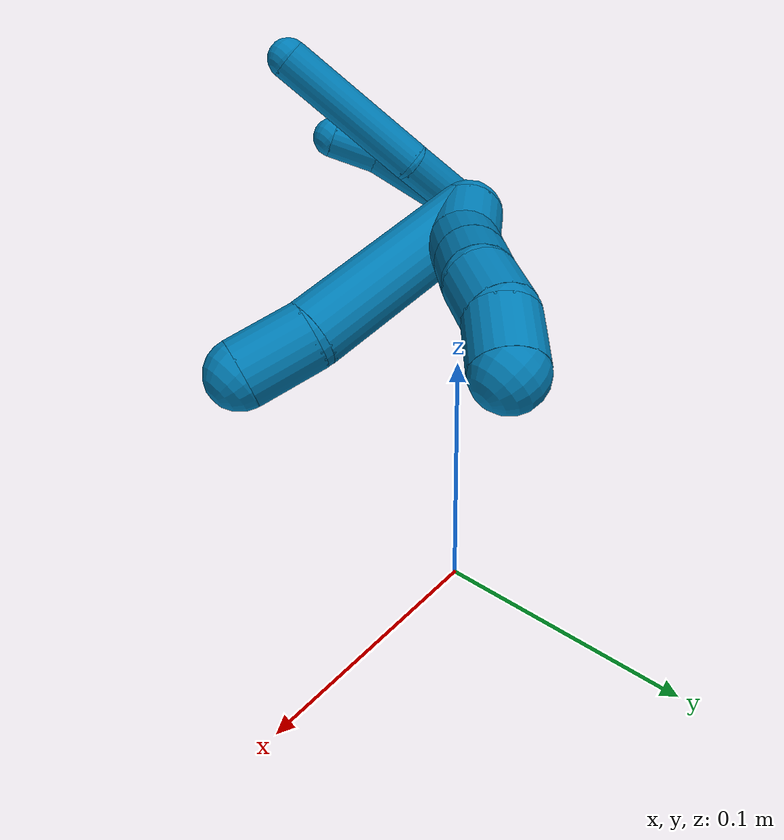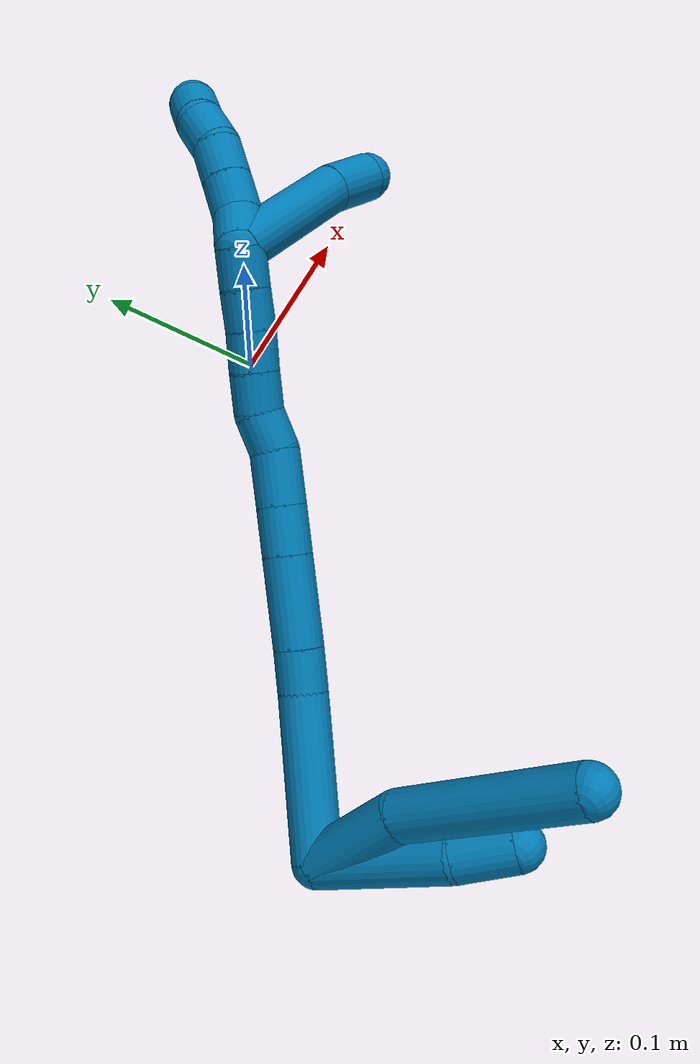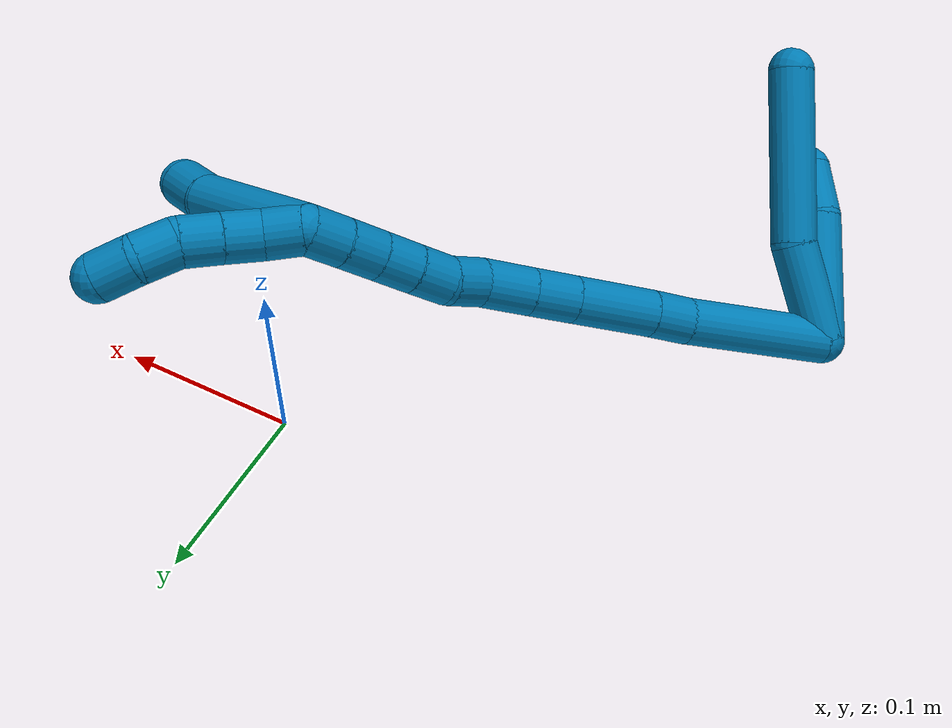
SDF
<sdf version="1.7">
 <world name="default">
  <model name="9">
   <static>0</static>
   <link name="9">
    <collision name="collision-cylinder-e_1_2_8">
     <pose>0.017237 -0.020061 -0.007494 1.9283 0.677734 0.939916</pose>
     <geometry><cylinder><radius>0.0125</radius><length>0.054981</length></cylinder></geometry>
     <surface>
      <friction><ode><mu>1.16</mu><mu2>1.16</mu2><slip1>0</slip1><slip2>0</slip2></ode></friction>
      <contact><ode><kp>1e+06</kp><kd>1</kd><max_vel>0</max_vel><min_depth>0.001</min_depth></ode></contact>
     </surface>
    </collision>
    <visual name="visual-cylinder-e_1_2_8">
     <pose>0.017237 -0.020061 -0.007494 1.9283 0.677734 0.939916</pose>
     <geometry><cylinder><radius>0.0125</radius><length>0.054981</length></cylinder></geometry>
     <material><ambient>0 0.490196 0.709804 1</ambient></material>
    </visual>
    <collision name="collision-cylinder-e_2_8_6">
     <pose>0.053552 -0.083029 -0.022216 1.7377 0.413197 0.485912</pose>
     <geometry><cylinder><radius>0.0125</radius><length>0.095019</length></cylinder></geometry>
     <surface>
      <friction><ode><mu>1.16</mu><mu2>1.16</mu2><slip1>0</slip1><slip2>0</slip2></ode></friction>
      <contact><ode><kp>1e+06</kp><kd>1</kd><max_vel>0</max_vel><min_depth>0.001</min_depth></ode></contact>
     </surface>
    </collision>
    <visual name="visual-cylinder-e_2_8_6">
     <pose>0.053552 -0.083029 -0.022216 1.7377 0.413197 0.485912</pose>
     <geometry><cylinder><radius>0.0125</radius><length>0.095019</length></cylinder></geometry>
     <material><ambient>0 0.490196 0.709804 1</ambient></material>
    </visual>
    <collision name="collision-cylinder-e_1_2_9">
     <pose>0.009195 -0.032657 -0.00847 1.82457 0.266089 0.342561</pose>
     <geometry><cylinder><radius>0.0125</radius><length>0.069935</length></cylinder></geometry>
     <surface>
      <friction><ode><mu>1.16</mu><mu2>1.16</mu2><slip1>0</slip1><slip2>0</slip2></ode></friction>
      <contact><ode><kp>1e+06</kp><kd>1</kd><max_vel>0</max_vel><min_depth>0.001</min_depth></ode></contact>
     </surface>
    </collision>
    <visual name="visual-cylinder-e_1_2_9">
     <pose>0.009195 -0.032657 -0.00847 1.82457 0.266089 0.342561</pose>
     <geometry><cylinder><radius>0.0125</radius><length>0.069935</length></cylinder></geometry>
     <material><ambient>0 0.490196 0.709804 1</ambient></material>
    </visual>
    <collision name="collision-cylinder-e_2_9_5">
     <pose>0.021556 -0.078379 -0.023665 2.04611 0.212158 0.345628</pose>
     <geometry><cylinder><radius>0.0125</radius><length>0.030065</length></cylinder></geometry>
     <surface>
      <friction><ode><mu>1.16</mu><mu2>1.16</mu2><slip1>0</slip1><slip2>0</slip2></ode></friction>
      <contact><ode><kp>1e+06</kp><kd>1</kd><max_vel>0</max_vel><min_depth>0.001</min_depth></ode></contact>
     </surface>
    </collision>
    <visual name="visual-cylinder-e_2_9_5">
     <pose>0.021556 -0.078379 -0.023665 2.04611 0.212158 0.345628</pose>
     <geometry><cylinder><radius>0.0125</radius><length>0.030065</length></cylinder></geometry>
     <material><ambient>0 0.490196 0.709804 1</ambient></material>
    </visual>
    <collision name="collision-cylinder-e_1_2_10">
     <pose>0.032251 0.01221 -0.0208 -2.61079 0.928681 -2.14717</pose>
     <geometry><cylinder><radius>0.0125</radius><length>0.080545</length></cylinder></geometry>
     <surface>
      <friction><ode><mu>1.16</mu><mu2>1.16</mu2><slip1>0</slip1><slip2>0</slip2></ode></friction>
      <contact><ode><kp>1e+06</kp><kd>1</kd><max_vel>0</max_vel><min_depth>0.001</min_depth></ode></contact>
     </surface>
    </collision>
    <visual name="visual-cylinder-e_1_2_10">
     <pose>0.032251 0.01221 -0.0208 -2.61079 0.928681 -2.14717</pose>
     <geometry><cylinder><radius>0.0125</radius><length>0.080545</length></cylinder></geometry>
     <material><ambient>0 0.490196 0.709804 1</ambient></material>
    </visual>
    <collision name="collision-cylinder-e_2_10_11">
     <pose>0.073925 0.027289 -0.046386 -2.60138 1.03608 -2.23719</pose>
     <geometry><cylinder><radius>0.0125</radius><length>0.021902</length></cylinder></geometry>
     <surface>
      <friction><ode><mu>1.16</mu><mu2>1.16</mu2><slip1>0</slip1><slip2>0</slip2></ode></friction>
      <contact><ode><kp>1e+06</kp><kd>1</kd><max_vel>0</max_vel><min_depth>0.001</min_depth></ode></contact>
     </surface>
    </collision>
    <visual name="visual-cylinder-e_2_10_11">
     <pose>0.073925 0.027289 -0.046386 -2.60138 1.03608 -2.23719</pose>
     <geometry><cylinder><radius>0.0125</radius><length>0.021902</length></cylinder></geometry>
     <material><ambient>0 0.490196 0.709804 1</ambient></material>
    </visual>
    <collision name="collision-cylinder-e_3_11_12">
     <pose>0.102691 0.036713 -0.061085 -2.55752 1.0199 -2.15517</pose>
     <geometry><cylinder><radius>0.0125</radius><length>0.045404</length></cylinder></geometry>
     <surface>
      <friction><ode><mu>1.16</mu><mu2>1.16</mu2><slip1>0</slip1><slip2>0</slip2></ode></friction>
      <contact><ode><kp>1e+06</kp><kd>1</kd><max_vel>0</max_vel><min_depth>0.001</min_depth></ode></contact>
     </surface>
    </collision>
    <visual name="visual-cylinder-e_3_11_12">
     <pose>0.102691 0.036713 -0.061085 -2.55752 1.0199 -2.15517</pose>
     <geometry><cylinder><radius>0.0125</radius><length>0.045404</length></cylinder></geometry>
     <material><ambient>0 0.490196 0.709804 1</ambient></material>
    </visual>
    <collision name="collision-cylinder-e_4_12_13">
     <pose>0.132445 0.046778 -0.076334 -2.5594 1.02045 -2.15856</pose>
     <geometry><cylinder><radius>0.0125</radius><length>0.024427</length></cylinder></geometry>
     <surface>
      <friction><ode><mu>1.16</mu><mu2>1.16</mu2><slip1>0</slip1><slip2>0</slip2></ode></friction>
      <contact><ode><kp>1e+06</kp><kd>1</kd><max_vel>0</max_vel><min_depth>0.001</min_depth></ode></contact>
     </surface>
    </collision>
    <visual name="visual-cylinder-e_4_12_13">
     <pose>0.132445 0.046778 -0.076334 -2.5594 1.02045 -2.15856</pose>
     <geometry><cylinder><radius>0.0125</radius><length>0.024427</length></cylinder></geometry>
     <material><ambient>0 0.490196 0.709804 1</ambient></material>
    </visual>
    <collision name="collision-cylinder-e_5_13_14">
     <pose>0.154747 0.05423 -0.087592 -2.5545 1.03168 -2.16209</pose>
     <geometry><cylinder><radius>0.0125</radius><length>0.027715</length></cylinder></geometry>
     <surface>
      <friction><ode><mu>1.16</mu><mu2>1.16</mu2><slip1>0</slip1><slip2>0</slip2></ode></friction>
      <contact><ode><kp>1e+06</kp><kd>1</kd><max_vel>0</max_vel><min_depth>0.001</min_depth></ode></contact>
     </surface>
    </collision>
    <visual name="visual-cylinder-e_5_13_14">
     <pose>0.154747 0.05423 -0.087592 -2.5545 1.03168 -2.16209</pose>
     <geometry><cylinder><radius>0.0125</radius><length>0.027715</length></cylinder></geometry>
     <material><ambient>0 0.490196 0.709804 1</ambient></material>
    </visual>
    <collision name="collision-cylinder-e_6_14_15">
     <pose>0.175539 0.062386 -0.095259 -1.96299 1.09719 -1.4812</pose>
     <geometry><cylinder><radius>0.0125</radius><length>0.020002</length></cylinder></geometry>
     <surface>
      <friction><ode><mu>1.16</mu><mu2>1.16</mu2><slip1>0</slip1><slip2>0</slip2></ode></friction>
      <contact><ode><kp>1e+06</kp><kd>1</kd><max_vel>0</max_vel><min_depth>0.001</min_depth></ode></contact>
     </surface>
    </collision>
    <visual name="visual-cylinder-e_6_14_15">
     <pose>0.175539 0.062386 -0.095259 -1.96299 1.09719 -1.4812</pose>
     <geometry><cylinder><radius>0.0125</radius><length>0.020002</length></cylinder></geometry>
     <material><ambient>0 0.490196 0.709804 1</ambient></material>
    </visual>
    <collision name="collision-cylinder-e_7_15_16">
     <pose>0.193844 0.068262 -0.09997 -2.63157 1.22382 -2.43025</pose>
     <geometry><cylinder><radius>0.0125</radius><length>0.020001</length></cylinder></geometry>
     <surface>
      <friction><ode><mu>1.16</mu><mu2>1.16</mu2><slip1>0</slip1><slip2>0</slip2></ode></friction>
      <contact><ode><kp>1e+06</kp><kd>1</kd><max_vel>0</max_vel><min_depth>0.001</min_depth></ode></contact>
     </surface>
    </collision>
    <visual name="visual-cylinder-e_7_15_16">
     <pose>0.193844 0.068262 -0.09997 -2.63157 1.22382 -2.43025</pose>
     <geometry><cylinder><radius>0.0125</radius><length>0.020001</length></cylinder></geometry>
     <material><ambient>0 0.490196 0.709804 1</ambient></material>
    </visual>
    <collision name="collision-cylinder-e_8_16_17">
     <pose>0.212575 0.07143 -0.10622 -2.71091 1.20133 -2.52352</pose>
     <geometry><cylinder><radius>0.0125</radius><length>0.020003</length></cylinder></geometry>
     <surface>
      <friction><ode><mu>1.16</mu><mu2>1.16</mu2><slip1>0</slip1><slip2>0</slip2></ode></friction>
      <contact><ode><kp>1e+06</kp><kd>1</kd><max_vel>0</max_vel><min_depth>0.001</min_depth></ode></contact>
     </surface>
    </collision>
    <visual name="visual-cylinder-e_8_16_17">
     <pose>0.212575 0.07143 -0.10622 -2.71091 1.20133 -2.52352</pose>
     <geometry><cylinder><radius>0.0125</radius><length>0.020003</length></cylinder></geometry>
     <material><ambient>0 0.490196 0.709804 1</ambient></material>
    </visual>
    <collision name="collision-cylinder-e_9_17_18">
     <pose>0.231423 0.074613 -0.11206 -2.56183 1.26 -2.36493</pose>
     <geometry><cylinder><radius>0.0125</radius><length>0.02</length></cylinder></geometry>
     <surface>
      <friction><ode><mu>1.16</mu><mu2>1.16</mu2><slip1>0</slip1><slip2>0</slip2></ode></friction>
      <contact><ode><kp>1e+06</kp><kd>1</kd><max_vel>0</max_vel><min_depth>0.001</min_depth></ode></contact>
     </surface>
    </collision>
    <visual name="visual-cylinder-e_9_17_18">
     <pose>0.231423 0.074613 -0.11206 -2.56183 1.26 -2.36493</pose>
     <geometry><cylinder><radius>0.0125</radius><length>0.02</length></cylinder></geometry>
     <material><ambient>0 0.490196 0.709804 1</ambient></material>
    </visual>
    <collision name="collision-cylinder-e_10_18_1">
     <pose>0.250336 0.077969 -0.117613 -2.63002 1.22031 -2.42572</pose>
     <geometry><cylinder><radius>0.0125</radius><length>0.02</length></cylinder></geometry>
     <surface>
      <friction><ode><mu>1.16</mu><mu2>1.16</mu2><slip1>0</slip1><slip2>0</slip2></ode></friction>
      <contact><ode><kp>1e+06</kp><kd>1</kd><max_vel>0</max_vel><min_depth>0.001</min_depth></ode></contact>
     </surface>
    </collision>
    <visual name="visual-cylinder-e_10_18_1">
     <pose>0.250336 0.077969 -0.117613 -2.63002 1.22031 -2.42572</pose>
     <geometry><cylinder><radius>0.0125</radius><length>0.02</length></cylinder></geometry>
     <material><ambient>0 0.490196 0.709804 1</ambient></material>
    </visual>
    <collision name="collision-cylinder-e_1_1_19">
     <pose>0.264807 0.08447 -0.127746 -2.54783 0.532785 -1.45674</pose>
     <geometry><cylinder><radius>0.0125</radius><length>0.02</length></cylinder></geometry>
     <surface>
      <friction><ode><mu>1.16</mu><mu2>1.16</mu2><slip1>0</slip1><slip2>0</slip2></ode></friction>
      <contact><ode><kp>1e+06</kp><kd>1</kd><max_vel>0</max_vel><min_depth>0.001</min_depth></ode></contact>
     </surface>
    </collision>
    <visual name="visual-cylinder-e_1_1_19">
     <pose>0.264807 0.08447 -0.127746 -2.54783 0.532785 -1.45674</pose>
     <geometry><cylinder><radius>0.0125</radius><length>0.02</length></cylinder></geometry>
     <material><ambient>0 0.490196 0.709804 1</ambient></material>
    </visual>
    <collision name="collision-cylinder-e_2_19_20">
     <pose>0.277111 0.094439 -0.139499 -2.30114 0.807385 -1.52575</pose>
     <geometry><cylinder><radius>0.0125</radius><length>0.02</length></cylinder></geometry>
     <surface>
      <friction><ode><mu>1.16</mu><mu2>1.16</mu2><slip1>0</slip1><slip2>0</slip2></ode></friction>
      <contact><ode><kp>1e+06</kp><kd>1</kd><max_vel>0</max_vel><min_depth>0.001</min_depth></ode></contact>
     </surface>
    </collision>
    <visual name="visual-cylinder-e_2_19_20">
     <pose>0.277111 0.094439 -0.139499 -2.30114 0.807385 -1.52575</pose>
     <geometry><cylinder><radius>0.0125</radius><length>0.02</length></cylinder></geometry>
     <material><ambient>0 0.490196 0.709804 1</ambient></material>
    </visual>
    <collision name="collision-cylinder-e_3_20_21">
     <pose>0.291424 0.104856 -0.148806 -2.29893 0.787729 -1.49537</pose>
     <geometry><cylinder><radius>0.0125</radius><length>0.02</length></cylinder></geometry>
     <surface>
      <friction><ode><mu>1.16</mu><mu2>1.16</mu2><slip1>0</slip1><slip2>0</slip2></ode></friction>
      <contact><ode><kp>1e+06</kp><kd>1</kd><max_vel>0</max_vel><min_depth>0.001</min_depth></ode></contact>
     </surface>
    </collision>
    <visual name="visual-cylinder-e_3_20_21">
     <pose>0.291424 0.104856 -0.148806 -2.29893 0.787729 -1.49537</pose>
     <geometry><cylinder><radius>0.0125</radius><length>0.02</length></cylinder></geometry>
     <material><ambient>0 0.490196 0.709804 1</ambient></material>
    </visual>
    <collision name="collision-cylinder-e_4_21_22">
     <pose>0.303611 0.11756 -0.157819 -2.09684 0.53519 -0.888885</pose>
     <geometry><cylinder><radius>0.0125</radius><length>0.02</length></cylinder></geometry>
     <surface>
      <friction><ode><mu>1.16</mu><mu2>1.16</mu2><slip1>0</slip1><slip2>0</slip2></ode></friction>
      <contact><ode><kp>1e+06</kp><kd>1</kd><max_vel>0</max_vel><min_depth>0.001</min_depth></ode></contact>
     </surface>
    </collision>
    <visual name="visual-cylinder-e_4_21_22">
     <pose>0.303611 0.11756 -0.157819 -2.09684 0.53519 -0.888885</pose>
     <geometry><cylinder><radius>0.0125</radius><length>0.02</length></cylinder></geometry>
     <material><ambient>0 0.490196 0.709804 1</ambient></material>
    </visual>
    <collision name="collision-cylinder-e_5_22_4">
     <pose>0.311485 0.131802 -0.168922 -2.35473 0.281073 -0.656966</pose>
     <geometry><cylinder><radius>0.0125</radius><length>0.02</length></cylinder></geometry>
     <surface>
      <friction><ode><mu>1.16</mu><mu2>1.16</mu2><slip1>0</slip1><slip2>0</slip2></ode></friction>
      <contact><ode><kp>1e+06</kp><kd>1</kd><max_vel>0</max_vel><min_depth>0.001</min_depth></ode></contact>
     </surface>
    </collision>
    <visual name="visual-cylinder-e_5_22_4">
     <pose>0.311485 0.131802 -0.168922 -2.35473 0.281073 -0.656966</pose>
     <geometry><cylinder><radius>0.0125</radius><length>0.02</length></cylinder></geometry>
     <material><ambient>0 0.490196 0.709804 1</ambient></material>
    </visual>
    <collision name="collision-cylinder-e_1_1_23">
     <pose>0.263173 0.076359 -0.15723 3.05196 0.093425 1.61231</pose>
     <geometry><cylinder><radius>0.0125</radius><length>0.073863</length></cylinder></geometry>
     <surface>
      <friction><ode><mu>1.16</mu><mu2>1.16</mu2><slip1>0</slip1><slip2>0</slip2></ode></friction>
      <contact><ode><kp>1e+06</kp><kd>1</kd><max_vel>0</max_vel><min_depth>0.001</min_depth></ode></contact>
     </surface>
    </collision>
    <visual name="visual-cylinder-e_1_1_23">
     <pose>0.263173 0.076359 -0.15723 3.05196 0.093425 1.61231</pose>
     <geometry><cylinder><radius>0.0125</radius><length>0.073863</length></cylinder></geometry>
     <material><ambient>0 0.490196 0.709804 1</ambient></material>
    </visual>
    <collision name="collision-cylinder-e_2_23_3">
     <pose>0.266224 0.069454 -0.206405 2.86126 -0.030169 -0.213036</pose>
     <geometry><cylinder><radius>0.0125</radius><length>0.026137</length></cylinder></geometry>
     <surface>
      <friction><ode><mu>1.16</mu><mu2>1.16</mu2><slip1>0</slip1><slip2>0</slip2></ode></friction>
      <contact><ode><kp>1e+06</kp><kd>1</kd><max_vel>0</max_vel><min_depth>0.001</min_depth></ode></contact>
     </surface>
    </collision>
    <visual name="visual-cylinder-e_2_23_3">
     <pose>0.266224 0.069454 -0.206405 2.86126 -0.030169 -0.213036</pose>
     <geometry><cylinder><radius>0.0125</radius><length>0.026137</length></cylinder></geometry>
     <material><ambient>0 0.490196 0.709804 1</ambient></material>
    </visual>
    <collision name="collision-sphere-3">
     <pose>0.26583 0.06584 -0.218958 0 -0 0</pose>
     <geometry><sphere><radius>0.0125</radius></sphere></geometry>
     <surface>
      <friction><ode><mu>1.16</mu><mu2>1.16</mu2><slip1>0</slip1><slip2>0</slip2></ode></friction>
      <contact><ode><kp>1e+06</kp><kd>1</kd><max_vel>0</max_vel><min_depth>0.001</min_depth></ode></contact>
     </surface>
    </collision>
    <visual name="visual-sphere-3">
     <pose>0.26583 0.06584 -0.218958 0 -0 0</pose>
     <geometry><sphere><radius>0.0125</radius></sphere></geometry>
     <material><ambient>0 0.490196 0.709804 1</ambient></material>
    </visual>
    <collision name="collision-sphere-23">
     <pose>0.266619 0.073068 -0.193852 0 -0 0</pose>
     <geometry><sphere><radius>0.0125</radius></sphere></geometry>
     <surface>
      <friction><ode><mu>1.16</mu><mu2>1.16</mu2><slip1>0</slip1><slip2>0</slip2></ode></friction>
      <contact><ode><kp>1e+06</kp><kd>1</kd><max_vel>0</max_vel><min_depth>0.001</min_depth></ode></contact>
     </surface>
    </collision>
    <visual name="visual-sphere-23">
     <pose>0.266619 0.073068 -0.193852 0 -0 0</pose>
     <geometry><sphere><radius>0.0125</radius></sphere></geometry>
     <material><ambient>0 0.490196 0.709804 1</ambient></material>
    </visual>
    <collision name="collision-sphere-4">
     <pose>0.314259 0.138606 -0.175706 0 -0 0</pose>
     <geometry><sphere><radius>0.0125</radius></sphere></geometry>
     <surface>
      <friction><ode><mu>1.16</mu><mu2>1.16</mu2><slip1>0</slip1><slip2>0</slip2></ode></friction>
      <contact><ode><kp>1e+06</kp><kd>1</kd><max_vel>0</max_vel><min_depth>0.001</min_depth></ode></contact>
     </surface>
    </collision>
    <visual name="visual-sphere-4">
     <pose>0.314259 0.138606 -0.175706 0 -0 0</pose>
     <geometry><sphere><radius>0.0125</radius></sphere></geometry>
     <material><ambient>0 0.490196 0.709804 1</ambient></material>
    </visual>
    <collision name="collision-sphere-22">
     <pose>0.308711 0.124999 -0.162138 0 -0 0</pose>
     <geometry><sphere><radius>0.0125</radius></sphere></geometry>
     <surface>
      <friction><ode><mu>1.16</mu><mu2>1.16</mu2><slip1>0</slip1><slip2>0</slip2></ode></friction>
      <contact><ode><kp>1e+06</kp><kd>1</kd><max_vel>0</max_vel><min_depth>0.001</min_depth></ode></contact>
     </surface>
    </collision>
    <visual name="visual-sphere-22">
     <pose>0.308711 0.124999 -0.162138 0 -0 0</pose>
     <geometry><sphere><radius>0.0125</radius></sphere></geometry>
     <material><ambient>0 0.490196 0.709804 1</ambient></material>
    </visual>
    <collision name="collision-sphere-21">
     <pose>0.298511 0.110121 -0.1535 0 -0 0</pose>
     <geometry><sphere><radius>0.0125</radius></sphere></geometry>
     <surface>
      <friction><ode><mu>1.16</mu><mu2>1.16</mu2><slip1>0</slip1><slip2>0</slip2></ode></friction>
      <contact><ode><kp>1e+06</kp><kd>1</kd><max_vel>0</max_vel><min_depth>0.001</min_depth></ode></contact>
     </surface>
    </collision>
    <visual name="visual-sphere-21">
     <pose>0.298511 0.110121 -0.1535 0 -0 0</pose>
     <geometry><sphere><radius>0.0125</radius></sphere></geometry>
     <material><ambient>0 0.490196 0.709804 1</ambient></material>
    </visual>
    <collision name="collision-sphere-20">
     <pose>0.284336 0.09959 -0.144111 0 -0 0</pose>
     <geometry><sphere><radius>0.0125</radius></sphere></geometry>
     <surface>
      <friction><ode><mu>1.16</mu><mu2>1.16</mu2><slip1>0</slip1><slip2>0</slip2></ode></friction>
      <contact><ode><kp>1e+06</kp><kd>1</kd><max_vel>0</max_vel><min_depth>0.001</min_depth></ode></contact>
     </surface>
    </collision>
    <visual name="visual-sphere-20">
     <pose>0.284336 0.09959 -0.144111 0 -0 0</pose>
     <geometry><sphere><radius>0.0125</radius></sphere></geometry>
     <material><ambient>0 0.490196 0.709804 1</ambient></material>
    </visual>
    <collision name="collision-sphere-10">
     <pose>0.064503 0.024419 -0.0416 0 -0 0</pose>
     <geometry><sphere><radius>0.0125</radius></sphere></geometry>
     <surface>
      <friction><ode><mu>1.16</mu><mu2>1.16</mu2><slip1>0</slip1><slip2>0</slip2></ode></friction>
      <contact><ode><kp>1e+06</kp><kd>1</kd><max_vel>0</max_vel><min_depth>0.001</min_depth></ode></contact>
     </surface>
    </collision>
    <visual name="visual-sphere-10">
     <pose>0.064503 0.024419 -0.0416 0 -0 0</pose>
     <geometry><sphere><radius>0.0125</radius></sphere></geometry>
     <material><ambient>0 0.490196 0.709804 1</ambient></material>
    </visual>
    <collision name="collision-sphere-5">
     <pose>0.024721 -0.091446 -0.030389 0 -0 0</pose>
     <geometry><sphere><radius>0.0125</radius></sphere></geometry>
     <surface>
      <friction><ode><mu>1.16</mu><mu2>1.16</mu2><slip1>0</slip1><slip2>0</slip2></ode></friction>
      <contact><ode><kp>1e+06</kp><kd>1</kd><max_vel>0</max_vel><min_depth>0.001</min_depth></ode></contact>
     </surface>
    </collision>
    <visual name="visual-sphere-5">
     <pose>0.024721 -0.091446 -0.030389 0 -0 0</pose>
     <geometry><sphere><radius>0.0125</radius></sphere></geometry>
     <material><ambient>0 0.490196 0.709804 1</ambient></material>
    </visual>
    <collision name="collision-sphere-6">
     <pose>0.072629 -0.125935 -0.029444 0 -0 0</pose>
     <geometry><sphere><radius>0.0125</radius></sphere></geometry>
     <surface>
      <friction><ode><mu>1.16</mu><mu2>1.16</mu2><slip1>0</slip1><slip2>0</slip2></ode></friction>
      <contact><ode><kp>1e+06</kp><kd>1</kd><max_vel>0</max_vel><min_depth>0.001</min_depth></ode></contact>
     </surface>
    </collision>
    <visual name="visual-sphere-6">
     <pose>0.072629 -0.125935 -0.029444 0 -0 0</pose>
     <geometry><sphere><radius>0.0125</radius></sphere></geometry>
     <material><ambient>0 0.490196 0.709804 1</ambient></material>
    </visual>
    <collision name="collision-sphere-9">
     <pose>0.01839 -0.065313 -0.01694 0 -0 0</pose>
     <geometry><sphere><radius>0.0125</radius></sphere></geometry>
     <surface>
      <friction><ode><mu>1.16</mu><mu2>1.16</mu2><slip1>0</slip1><slip2>0</slip2></ode></friction>
      <contact><ode><kp>1e+06</kp><kd>1</kd><max_vel>0</max_vel><min_depth>0.001</min_depth></ode></contact>
     </surface>
    </collision>
    <visual name="visual-sphere-9">
     <pose>0.01839 -0.065313 -0.01694 0 -0 0</pose>
     <geometry><sphere><radius>0.0125</radius></sphere></geometry>
     <material><ambient>0 0.490196 0.709804 1</ambient></material>
    </visual>
    <collision name="collision-sphere-2">
     <geometry><sphere><radius>0.0125</radius></sphere></geometry>
     <surface>
      <friction><ode><mu>1.16</mu><mu2>1.16</mu2><slip1>0</slip1><slip2>0</slip2></ode></friction>
      <contact><ode><kp>1e+06</kp><kd>1</kd><max_vel>0</max_vel><min_depth>0.001</min_depth></ode></contact>
     </surface>
    </collision>
    <visual name="visual-sphere-2">
     <geometry><sphere><radius>0.0125</radius></sphere></geometry>
     <material><ambient>0 0.490196 0.709804 1</ambient></material>
    </visual>
    <collision name="collision-sphere-19">
     <pose>0.269887 0.089289 -0.134886 0 -0 0</pose>
     <geometry><sphere><radius>0.0125</radius></sphere></geometry>
     <surface>
      <friction><ode><mu>1.16</mu><mu2>1.16</mu2><slip1>0</slip1><slip2>0</slip2></ode></friction>
      <contact><ode><kp>1e+06</kp><kd>1</kd><max_vel>0</max_vel><min_depth>0.001</min_depth></ode></contact>
     </surface>
    </collision>
    <visual name="visual-sphere-19">
     <pose>0.269887 0.089289 -0.134886 0 -0 0</pose>
     <geometry><sphere><radius>0.0125</radius></sphere></geometry>
     <material><ambient>0 0.490196 0.709804 1</ambient></material>
    </visual>
    <collision name="collision-sphere-8">
     <pose>0.034475 -0.040122 -0.014987 0 -0 0</pose>
     <geometry><sphere><radius>0.0125</radius></sphere></geometry>
     <surface>
      <friction><ode><mu>1.16</mu><mu2>1.16</mu2><slip1>0</slip1><slip2>0</slip2></ode></friction>
      <contact><ode><kp>1e+06</kp><kd>1</kd><max_vel>0</max_vel><min_depth>0.001</min_depth></ode></contact>
     </surface>
    </collision>
    <visual name="visual-sphere-8">
     <pose>0.034475 -0.040122 -0.014987 0 -0 0</pose>
     <geometry><sphere><radius>0.0125</radius></sphere></geometry>
     <material><ambient>0 0.490196 0.709804 1</ambient></material>
    </visual>
    <collision name="collision-sphere-11">
     <pose>0.083348 0.03016 -0.051172 0 -0 0</pose>
     <geometry><sphere><radius>0.0125</radius></sphere></geometry>
     <surface>
      <friction><ode><mu>1.16</mu><mu2>1.16</mu2><slip1>0</slip1><slip2>0</slip2></ode></friction>
      <contact><ode><kp>1e+06</kp><kd>1</kd><max_vel>0</max_vel><min_depth>0.001</min_depth></ode></contact>
     </surface>
    </collision>
    <visual name="visual-sphere-11">
     <pose>0.083348 0.03016 -0.051172 0 -0 0</pose>
     <geometry><sphere><radius>0.0125</radius></sphere></geometry>
     <material><ambient>0 0.490196 0.709804 1</ambient></material>
    </visual>
    <collision name="collision-sphere-12">
     <pose>0.122035 0.043265 -0.070999 0 -0 0</pose>
     <geometry><sphere><radius>0.0125</radius></sphere></geometry>
     <surface>
      <friction><ode><mu>1.16</mu><mu2>1.16</mu2><slip1>0</slip1><slip2>0</slip2></ode></friction>
      <contact><ode><kp>1e+06</kp><kd>1</kd><max_vel>0</max_vel><min_depth>0.001</min_depth></ode></contact>
     </surface>
    </collision>
    <visual name="visual-sphere-12">
     <pose>0.122035 0.043265 -0.070999 0 -0 0</pose>
     <geometry><sphere><radius>0.0125</radius></sphere></geometry>
     <material><ambient>0 0.490196 0.709804 1</ambient></material>
    </visual>
    <collision name="collision-sphere-13">
     <pose>0.142855 0.05029 -0.081669 0 -0 0</pose>
     <geometry><sphere><radius>0.0125</radius></sphere></geometry>
     <surface>
      <friction><ode><mu>1.16</mu><mu2>1.16</mu2><slip1>0</slip1><slip2>0</slip2></ode></friction>
      <contact><ode><kp>1e+06</kp><kd>1</kd><max_vel>0</max_vel><min_depth>0.001</min_depth></ode></contact>
     </surface>
    </collision>
    <visual name="visual-sphere-13">
     <pose>0.142855 0.05029 -0.081669 0 -0 0</pose>
     <geometry><sphere><radius>0.0125</radius></sphere></geometry>
     <material><ambient>0 0.490196 0.709804 1</ambient></material>
    </visual>
    <collision name="collision-sphere-14">
     <pose>0.166639 0.058171 -0.093515 0 -0 0</pose>
     <geometry><sphere><radius>0.0125</radius></sphere></geometry>
     <surface>
      <friction><ode><mu>1.16</mu><mu2>1.16</mu2><slip1>0</slip1><slip2>0</slip2></ode></friction>
      <contact><ode><kp>1e+06</kp><kd>1</kd><max_vel>0</max_vel><min_depth>0.001</min_depth></ode></contact>
     </surface>
    </collision>
    <visual name="visual-sphere-14">
     <pose>0.166639 0.058171 -0.093515 0 -0 0</pose>
     <geometry><sphere><radius>0.0125</radius></sphere></geometry>
     <material><ambient>0 0.490196 0.709804 1</ambient></material>
    </visual>
    <collision name="collision-sphere-15">
     <pose>0.184439 0.066601 -0.097002 0 -0 0</pose>
     <geometry><sphere><radius>0.0125</radius></sphere></geometry>
     <surface>
      <friction><ode><mu>1.16</mu><mu2>1.16</mu2><slip1>0</slip1><slip2>0</slip2></ode></friction>
      <contact><ode><kp>1e+06</kp><kd>1</kd><max_vel>0</max_vel><min_depth>0.001</min_depth></ode></contact>
     </surface>
    </collision>
    <visual name="visual-sphere-15">
     <pose>0.184439 0.066601 -0.097002 0 -0 0</pose>
     <geometry><sphere><radius>0.0125</radius></sphere></geometry>
     <material><ambient>0 0.490196 0.709804 1</ambient></material>
    </visual>
    <collision name="collision-sphere-16">
     <pose>0.203248 0.069922 -0.102938 0 -0 0</pose>
     <geometry><sphere><radius>0.0125</radius></sphere></geometry>
     <surface>
      <friction><ode><mu>1.16</mu><mu2>1.16</mu2><slip1>0</slip1><slip2>0</slip2></ode></friction>
      <contact><ode><kp>1e+06</kp><kd>1</kd><max_vel>0</max_vel><min_depth>0.001</min_depth></ode></contact>
     </surface>
    </collision>
    <visual name="visual-sphere-16">
     <pose>0.203248 0.069922 -0.102938 0 -0 0</pose>
     <geometry><sphere><radius>0.0125</radius></sphere></geometry>
     <material><ambient>0 0.490196 0.709804 1</ambient></material>
    </visual>
    <collision name="collision-sphere-17">
     <pose>0.221902 0.072938 -0.109502 0 -0 0</pose>
     <geometry><sphere><radius>0.0125</radius></sphere></geometry>
     <surface>
      <friction><ode><mu>1.16</mu><mu2>1.16</mu2><slip1>0</slip1><slip2>0</slip2></ode></friction>
      <contact><ode><kp>1e+06</kp><kd>1</kd><max_vel>0</max_vel><min_depth>0.001</min_depth></ode></contact>
     </surface>
    </collision>
    <visual name="visual-sphere-17">
     <pose>0.221902 0.072938 -0.109502 0 -0 0</pose>
     <geometry><sphere><radius>0.0125</radius></sphere></geometry>
     <material><ambient>0 0.490196 0.709804 1</ambient></material>
    </visual>
    <collision name="collision-sphere-18">
     <pose>0.240944 0.076288 -0.114619 0 -0 0</pose>
     <geometry><sphere><radius>0.0125</radius></sphere></geometry>
     <surface>
      <friction><ode><mu>1.16</mu><mu2>1.16</mu2><slip1>0</slip1><slip2>0</slip2></ode></friction>
      <contact><ode><kp>1e+06</kp><kd>1</kd><max_vel>0</max_vel><min_depth>0.001</min_depth></ode></contact>
     </surface>
    </collision>
    <visual name="visual-sphere-18">
     <pose>0.240944 0.076288 -0.114619 0 -0 0</pose>
     <geometry><sphere><radius>0.0125</radius></sphere></geometry>
     <material><ambient>0 0.490196 0.709804 1</ambient></material>
    </visual>
    <collision name="collision-sphere-1">
     <pose>0.259728 0.07965 -0.120607 0 -0 0</pose>
     <geometry><sphere><radius>0.0125</radius></sphere></geometry>
     <surface>
      <friction><ode><mu>1.16</mu><mu2>1.16</mu2><slip1>0</slip1><slip2>0</slip2></ode></friction>
      <contact><ode><kp>1e+06</kp><kd>1</kd><max_vel>0</max_vel><min_depth>0.001</min_depth></ode></contact>
     </surface>
    </collision>
    <visual name="visual-sphere-1">
     <pose>0.259728 0.07965 -0.120607 0 -0 0</pose>
     <geometry><sphere><radius>0.0125</radius></sphere></geometry>
     <material><ambient>0 0.490196 0.709804 1</ambient></material>
    </visual>
    <inertial>
     <pose>0.13383 0.023297 -0.074761 0 -0 0</pose>
     <mass>0.75</mass>
     <inertia><ixx>0.000166</ixx><ixy>0</ixy><ixz>0</ixz><iyy>0.000105</iyy><iyz>0</iyz><izz>-5e-05</izz></inertia>
    </inertial>
   </link>
   <pose>-0.239548 -0.171141 0.023111 -0.774596 -0.935823 0.730657</pose>
  </model>
 </world>
</sdf>
